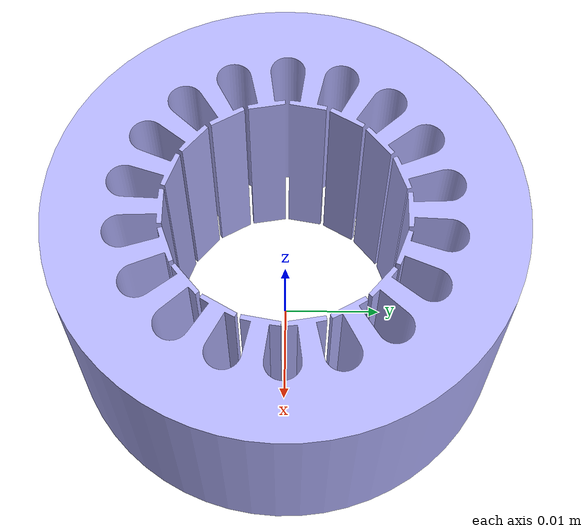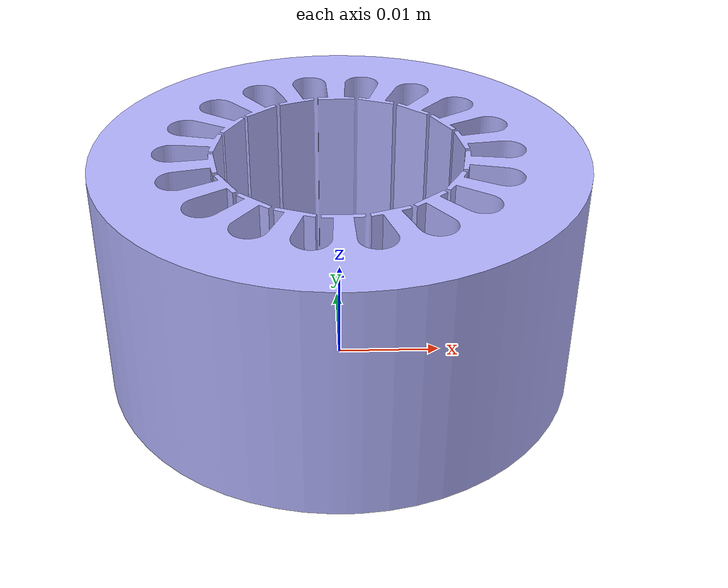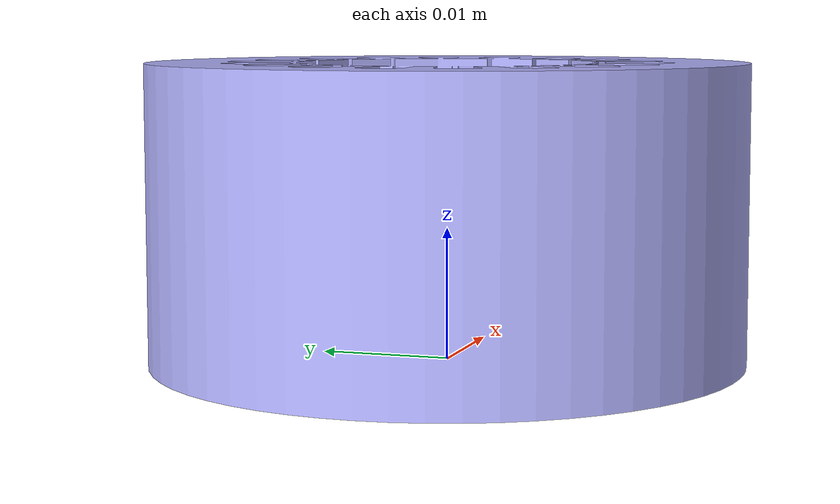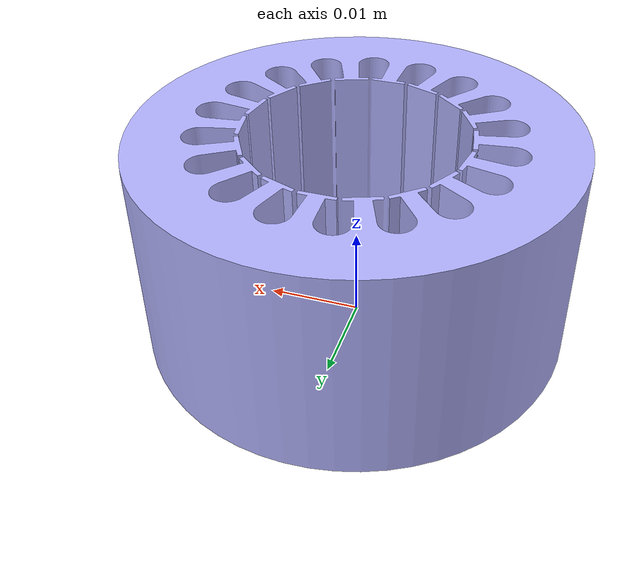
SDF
<?xml version="1.0" ?>
<sdf version="1.4">
	<model name='IRON_100X50'>
		<pose> 0 0 0 0 0 0 </pose>
		<link name="link">
			<inertial>
				<mass> 0.1 </mass>
				<pose> 0 0 0.00021547 0 0 0 </pose>
				<inertia>
					<ixx> 0.000024082 </ixx>
					<ixy> 0 </ixy>
					<ixz> 0 </ixz>
					<iyy> 0.000024082 </iyy>
					<iyz> 0 </iyz>
					<izz> 0.00001900477 </izz>
				</inertia>
			</inertial>

			<collision name="collision">
				<geometry>
					<mesh>
						<uri>/home/kevin/research/gazebo/evaluation_platform/models/iron_100_50/meshes/IRON_100X50.STL</uri>
						<scale> 1 1 1 </scale>
					</mesh>
				</geometry>
				<surface>
					<bounce>
						<restitution_coefficient> 0.1 </restitution_coefficient>
					</bounce>
					<friction>
						<ode>
							<mu> 0.9 </mu>
							<mu2> 0.9 </mu2>
						</ode>
					</friction>

				</surface>
			</collision>

			<visual name="visual">
				<material>
					<ambient> 0.7 0.7 1 1 </ambient>
					<diffuse> 0.7 0.7 1 1 </diffuse>
				</material>
				<geometry>
					<mesh>
						<uri>/home/kevin/research/gazebo/evaluation_platform/models/iron_100_50/meshes/IRON_100X50.STL</uri>
						<scale> 0.45 0.45 0.45 </scale>
					</mesh>
				</geometry>
			</visual>

		</link>
	</model>
</sdf>
